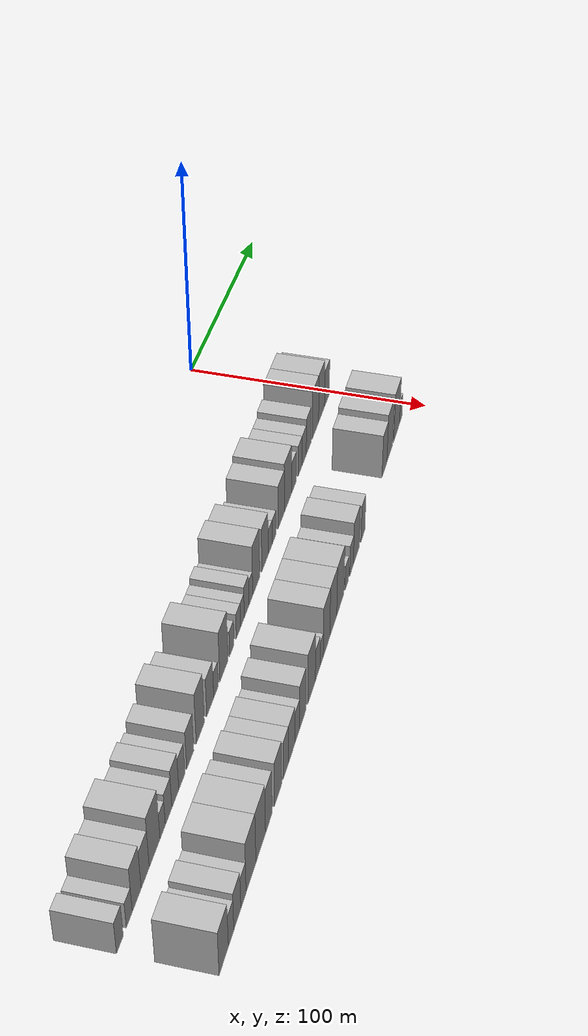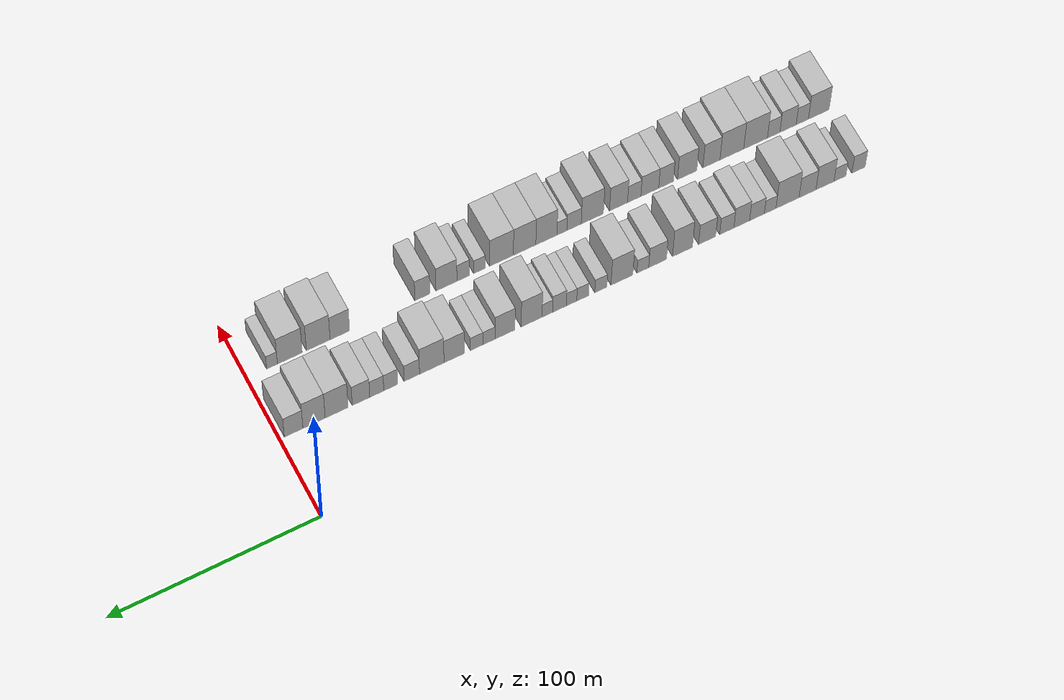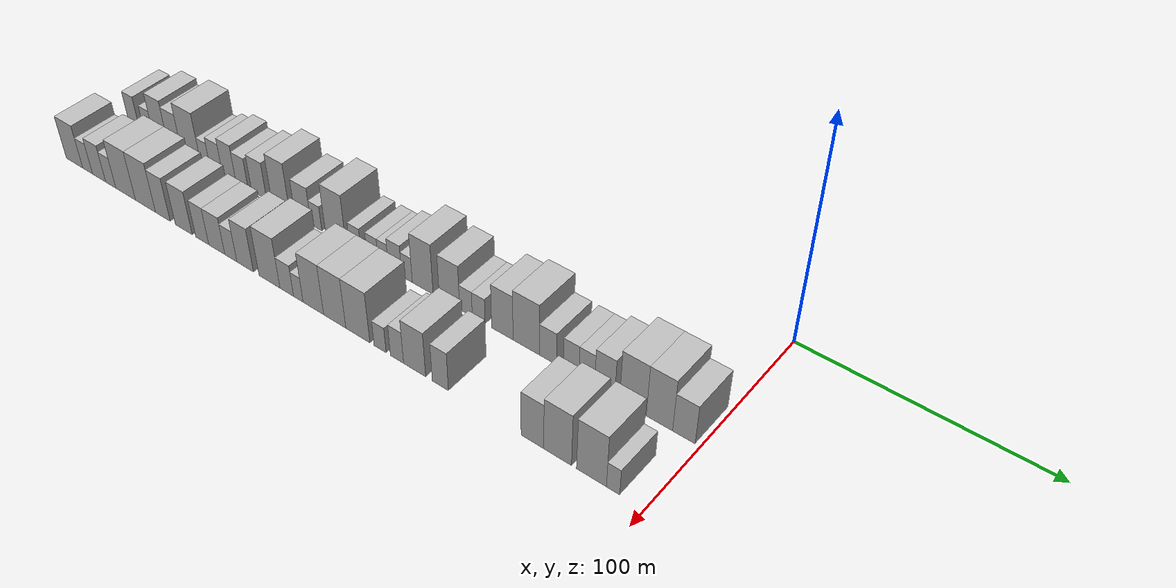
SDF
<sdf version="1.6">
 <world name="default">
  <model name="building_1">
   <static>1</static>
   <pose>50.0000 -280.6989 0 0.000000 0.000000 0.000000</pose>
   <link name="link">
    <pose>0 0 7.50 0 0 0</pose>
    <collision name="collision"><geometry><box><size>20.0000 6.6021 15.0000</size></box></geometry></collision>
    <visual name="visual">
     <cast_shadows>0</cast_shadows>
     <geometry><box><size>20.0000 6.6021 15.0000</size></box></geometry>
     <material>
      <script>
       <uri>model://HANNAS_wall/materials/scripts</uri>
       <uri>model://HANNAS_wall/materials/textures</uri>
       <name>vrc/HANNAS_wall</name>
      </script>
     </material>
    </visual>
   </link>
  </model>
  <model name="building_2">
   <static>1</static>
   <pose>50.0000 -271.4203 0 0.000000 0.000000 0.000000</pose>
   <link name="link">
    <pose>0 0 6.00 0 0 0</pose>
    <collision name="collision"><geometry><box><size>20.0000 5.9551 12.0000</size></box></geometry></collision>
    <visual name="visual">
     <cast_shadows>0</cast_shadows>
     <geometry><box><size>20.0000 5.9551 12.0000</size></box></geometry>
     <material>
      <script>
       <uri>model://HANNAS_wall/materials/scripts</uri>
       <uri>model://HANNAS_wall/materials/textures</uri>
       <name>vrc/HANNAS_wall</name>
      </script>
     </material>
    </visual>
   </link>
  </model>
  <model name="building_3">
   <static>1</static>
   <pose>50.0000 -263.9315 0 0.000000 0.000000 0.000000</pose>
   <link name="link">
    <pose>0 0 10.50 0 0 0</pose>
    <collision name="collision"><geometry><box><size>20.0000 9.0226 21.0000</size></box></geometry></collision>
    <visual name="visual">
     <cast_shadows>0</cast_shadows>
     <geometry><box><size>20.0000 9.0226 21.0000</size></box></geometry>
     <material>
      <script>
       <uri>model://HANNAS_wall/materials/scripts</uri>
       <uri>model://HANNAS_wall/materials/textures</uri>
       <name>vrc/HANNAS_wall</name>
      </script>
     </material>
    </visual>
   </link>
  </model>
  <model name="building_4">
   <static>1</static>
   <pose>50.0000 -255.2241 0 0.000000 0.000000 0.000000</pose>
   <link name="link">
    <pose>0 0 9.00 0 0 0</pose>
    <collision name="collision"><geometry><box><size>20.0000 8.3921 18.0000</size></box></geometry></collision>
    <visual name="visual">
     <cast_shadows>0</cast_shadows>
     <geometry><box><size>20.0000 8.3921 18.0000</size></box></geometry>
     <material>
      <script>
       <uri>model://HANNAS_wall/materials/scripts</uri>
       <uri>model://HANNAS_wall/materials/textures</uri>
       <name>vrc/HANNAS_wall</name>
      </script>
     </material>
    </visual>
   </link>
  </model>
  <model name="building_5">
   <static>1</static>
   <pose>50.0000 -245.2907 0 0.000000 0.000000 0.000000</pose>
   <link name="link">
    <pose>0 0 12.00 0 0 0</pose>
    <collision name="collision"><geometry><box><size>20.0000 11.4748 24.0000</size></box></geometry></collision>
    <visual name="visual">
     <cast_shadows>0</cast_shadows>
     <geometry><box><size>20.0000 11.4748 24.0000</size></box></geometry>
     <material>
      <script>
       <uri>model://HANNAS_wall/materials/scripts</uri>
       <uri>model://HANNAS_wall/materials/textures</uri>
       <name>vrc/HANNAS_wall</name>
      </script>
     </material>
    </visual>
   </link>
  </model>
  <model name="building_6">
   <static>1</static>
   <pose>50.0000 -236.6807 0 0.000000 0.000000 0.000000</pose>
   <link name="link">
    <pose>0 0 6.00 0 0 0</pose>
    <collision name="collision"><geometry><box><size>20.0000 5.7452 12.0000</size></box></geometry></collision>
    <visual name="visual">
     <cast_shadows>0</cast_shadows>
     <geometry><box><size>20.0000 5.7452 12.0000</size></box></geometry>
     <material>
      <script>
       <uri>model://HANNAS_wall/materials/scripts</uri>
       <uri>model://HANNAS_wall/materials/textures</uri>
       <name>vrc/HANNAS_wall</name>
      </script>
     </material>
    </visual>
   </link>
  </model>
  <model name="building_7">
   <static>1</static>
   <pose>50.0000 -230.1523 0 0.000000 0.000000 0.000000</pose>
   <link name="link">
    <pose>0 0 7.50 0 0 0</pose>
    <collision name="collision"><geometry><box><size>20.0000 7.3116 15.0000</size></box></geometry></collision>
    <visual name="visual">
     <cast_shadows>0</cast_shadows>
     <geometry><box><size>20.0000 7.3116 15.0000</size></box></geometry>
     <material>
      <script>
       <uri>model://HANNAS_wall/materials/scripts</uri>
       <uri>model://HANNAS_wall/materials/textures</uri>
       <name>vrc/HANNAS_wall</name>
      </script>
     </material>
    </visual>
   </link>
  </model>
  <model name="building_8">
   <static>1</static>
   <pose>50.0000 -222.6213 0 0.000000 0.000000 0.000000</pose>
   <link name="link">
    <pose>0 0 9.00 0 0 0</pose>
    <collision name="collision"><geometry><box><size>20.0000 7.7506 18.0000</size></box></geometry></collision>
    <visual name="visual">
     <cast_shadows>0</cast_shadows>
     <geometry><box><size>20.0000 7.7506 18.0000</size></box></geometry>
     <material>
      <script>
       <uri>model://HANNAS_wall/materials/scripts</uri>
       <uri>model://HANNAS_wall/materials/textures</uri>
       <name>vrc/HANNAS_wall</name>
      </script>
     </material>
    </visual>
   </link>
  </model>
  <model name="building_9">
   <static>1</static>
   <pose>50.0000 -215.2409 0 0.000000 0.000000 0.000000</pose>
   <link name="link">
    <pose>0 0 7.50 0 0 0</pose>
    <collision name="collision"><geometry><box><size>20.0000 7.0102 15.0000</size></box></geometry></collision>
    <visual name="visual">
     <cast_shadows>0</cast_shadows>
     <geometry><box><size>20.0000 7.0102 15.0000</size></box></geometry>
     <material>
      <script>
       <uri>model://HANNAS_wall/materials/scripts</uri>
       <uri>model://HANNAS_wall/materials/textures</uri>
       <name>vrc/HANNAS_wall</name>
      </script>
     </material>
    </visual>
   </link>
  </model>
  <model name="building_10">
   <static>1</static>
   <pose>50.0000 -205.5315 0 0.000000 0.000000 0.000000</pose>
   <link name="link">
    <pose>0 0 9.00 0 0 0</pose>
    <collision name="collision"><geometry><box><size>20.0000 8.4085 18.0000</size></box></geometry></collision>
    <visual name="visual">
     <cast_shadows>0</cast_shadows>
     <geometry><box><size>20.0000 8.4085 18.0000</size></box></geometry>
     <material>
      <script>
       <uri>model://HANNAS_wall/materials/scripts</uri>
       <uri>model://HANNAS_wall/materials/textures</uri>
       <name>vrc/HANNAS_wall</name>
      </script>
     </material>
    </visual>
   </link>
  </model>
  <model name="building_11">
   <static>1</static>
   <pose>50.0000 -193.4577 0 0.000000 0.000000 0.000000</pose>
   <link name="link">
    <pose>0 0 12.00 0 0 0</pose>
    <collision name="collision"><geometry><box><size>20.0000 9.7391 24.0000</size></box></geometry></collision>
    <visual name="visual">
     <cast_shadows>0</cast_shadows>
     <geometry><box><size>20.0000 9.7391 24.0000</size></box></geometry>
     <material>
      <script>
       <uri>model://HANNAS_wall/materials/scripts</uri>
       <uri>model://HANNAS_wall/materials/textures</uri>
       <name>vrc/HANNAS_wall</name>
      </script>
     </material>
    </visual>
   </link>
  </model>
  <model name="building_12">
   <static>1</static>
   <pose>50.0000 -181.2519 0 0.000000 0.000000 0.000000</pose>
   <link name="link">
    <pose>0 0 9.00 0 0 0</pose>
    <collision name="collision"><geometry><box><size>20.0000 8.6725 18.0000</size></box></geometry></collision>
    <visual name="visual">
     <cast_shadows>0</cast_shadows>
     <geometry><box><size>20.0000 8.6725 18.0000</size></box></geometry>
     <material>
      <script>
       <uri>model://HANNAS_wall/materials/scripts</uri>
       <uri>model://HANNAS_wall/materials/textures</uri>
       <name>vrc/HANNAS_wall</name>
      </script>
     </material>
    </visual>
   </link>
  </model>
  <model name="building_13">
   <static>1</static>
   <pose>50.0000 -174.0403 0 0.000000 0.000000 0.000000</pose>
   <link name="link">
    <pose>0 0 6.00 0 0 0</pose>
    <collision name="collision"><geometry><box><size>20.0000 5.7507 12.0000</size></box></geometry></collision>
    <visual name="visual">
     <cast_shadows>0</cast_shadows>
     <geometry><box><size>20.0000 5.7507 12.0000</size></box></geometry>
     <material>
      <script>
       <uri>model://HANNAS_wall/materials/scripts</uri>
       <uri>model://HANNAS_wall/materials/textures</uri>
       <name>vrc/HANNAS_wall</name>
      </script>
     </material>
    </visual>
   </link>
  </model>
  <model name="building_14">
   <static>1</static>
   <pose>50.0000 -163.8417 0 0.000000 0.000000 0.000000</pose>
   <link name="link">
    <pose>0 0 12.00 0 0 0</pose>
    <collision name="collision"><geometry><box><size>20.0000 10.6465 24.0000</size></box></geometry></collision>
    <visual name="visual">
     <cast_shadows>0</cast_shadows>
     <geometry><box><size>20.0000 10.6465 24.0000</size></box></geometry>
     <material>
      <script>
       <uri>model://HANNAS_wall/materials/scripts</uri>
       <uri>model://HANNAS_wall/materials/textures</uri>
       <name>vrc/HANNAS_wall</name>
      </script>
     </material>
    </visual>
   </link>
  </model>
  <model name="building_15">
   <static>1</static>
   <pose>50.0000 -153.5660 0 0.000000 0.000000 0.000000</pose>
   <link name="link">
    <pose>0 0 6.00 0 0 0</pose>
    <collision name="collision"><geometry><box><size>20.0000 5.9048 12.0000</size></box></geometry></collision>
    <visual name="visual">
     <cast_shadows>0</cast_shadows>
     <geometry><box><size>20.0000 5.9048 12.0000</size></box></geometry>
     <material>
      <script>
       <uri>model://HANNAS_wall/materials/scripts</uri>
       <uri>model://HANNAS_wall/materials/textures</uri>
       <name>vrc/HANNAS_wall</name>
      </script>
     </material>
    </visual>
   </link>
  </model>
  <model name="building_16">
   <static>1</static>
   <pose>50.0000 -144.7277 0 0.000000 0.000000 0.000000</pose>
   <link name="link">
    <pose>0 0 6.00 0 0 0</pose>
    <collision name="collision"><geometry><box><size>20.0000 5.7719 12.0000</size></box></geometry></collision>
    <visual name="visual">
     <cast_shadows>0</cast_shadows>
     <geometry><box><size>20.0000 5.7719 12.0000</size></box></geometry>
     <material>
      <script>
       <uri>model://HANNAS_wall/materials/scripts</uri>
       <uri>model://HANNAS_wall/materials/textures</uri>
       <name>vrc/HANNAS_wall</name>
      </script>
     </material>
    </visual>
   </link>
  </model>
  <model name="building_17">
   <static>1</static>
   <pose>50.0000 -139.3136 0 0.000000 0.000000 0.000000</pose>
   <link name="link">
    <pose>0 0 6.00 0 0 0</pose>
    <collision name="collision"><geometry><box><size>20.0000 5.0563 12.0000</size></box></geometry></collision>
    <visual name="visual">
     <cast_shadows>0</cast_shadows>
     <geometry><box><size>20.0000 5.0563 12.0000</size></box></geometry>
     <material>
      <script>
       <uri>model://HANNAS_wall/materials/scripts</uri>
       <uri>model://HANNAS_wall/materials/textures</uri>
       <name>vrc/HANNAS_wall</name>
      </script>
     </material>
    </visual>
   </link>
  </model>
  <model name="building_18">
   <static>1</static>
   <pose>50.0000 -133.4792 0 0.000000 0.000000 0.000000</pose>
   <link name="link">
    <pose>0 0 7.50 0 0 0</pose>
    <collision name="collision"><geometry><box><size>20.0000 6.6124 15.0000</size></box></geometry></collision>
    <visual name="visual">
     <cast_shadows>0</cast_shadows>
     <geometry><box><size>20.0000 6.6124 15.0000</size></box></geometry>
     <material>
      <script>
       <uri>model://HANNAS_wall/materials/scripts</uri>
       <uri>model://HANNAS_wall/materials/textures</uri>
       <name>vrc/HANNAS_wall</name>
      </script>
     </material>
    </visual>
   </link>
  </model>
  <model name="building_19">
   <static>1</static>
   <pose>50.0000 -127.5917 0 0.000000 0.000000 0.000000</pose>
   <link name="link">
    <pose>0 0 6.00 0 0 0</pose>
    <collision name="collision"><geometry><box><size>20.0000 5.1625 12.0000</size></box></geometry></collision>
    <visual name="visual">
     <cast_shadows>0</cast_shadows>
     <geometry><box><size>20.0000 5.1625 12.0000</size></box></geometry>
     <material>
      <script>
       <uri>model://HANNAS_wall/materials/scripts</uri>
       <uri>model://HANNAS_wall/materials/textures</uri>
       <name>vrc/HANNAS_wall</name>
      </script>
     </material>
    </visual>
   </link>
  </model>
  <model name="building_20">
   <static>1</static>
   <pose>50.0000 -119.9798 0 0.000000 0.000000 0.000000</pose>
   <link name="link">
    <pose>0 0 12.00 0 0 0</pose>
    <collision name="collision"><geometry><box><size>20.0000 10.0615 24.0000</size></box></geometry></collision>
    <visual name="visual">
     <cast_shadows>0</cast_shadows>
     <geometry><box><size>20.0000 10.0615 24.0000</size></box></geometry>
     <material>
      <script>
       <uri>model://HANNAS_wall/materials/scripts</uri>
       <uri>model://HANNAS_wall/materials/textures</uri>
       <name>vrc/HANNAS_wall</name>
      </script>
     </material>
    </visual>
   </link>
  </model>
  <model name="building_21">
   <static>1</static>
   <pose>50.0000 -107.1472 0 0.000000 0.000000 0.000000</pose>
   <link name="link">
    <pose>0 0 10.50 0 0 0</pose>
    <collision name="collision"><geometry><box><size>20.0000 9.6036 21.0000</size></box></geometry></collision>
    <visual name="visual">
     <cast_shadows>0</cast_shadows>
     <geometry><box><size>20.0000 9.6036 21.0000</size></box></geometry>
     <material>
      <script>
       <uri>model://HANNAS_wall/materials/scripts</uri>
       <uri>model://HANNAS_wall/materials/textures</uri>
       <name>vrc/HANNAS_wall</name>
      </script>
     </material>
    </visual>
   </link>
  </model>
  <model name="building_22">
   <static>1</static>
   <pose>50.0000 -99.4069 0 0.000000 0.000000 0.000000</pose>
   <link name="link">
    <pose>0 0 6.00 0 0 0</pose>
    <collision name="collision"><geometry><box><size>20.0000 5.8770 12.0000</size></box></geometry></collision>
    <visual name="visual">
     <cast_shadows>0</cast_shadows>
     <geometry><box><size>20.0000 5.8770 12.0000</size></box></geometry>
     <material>
      <script>
       <uri>model://HANNAS_wall/materials/scripts</uri>
       <uri>model://HANNAS_wall/materials/textures</uri>
       <name>vrc/HANNAS_wall</name>
      </script>
     </material>
    </visual>
   </link>
  </model>
  <model name="building_23">
   <static>1</static>
   <pose>50.0000 -93.5156 0 0.000000 0.000000 0.000000</pose>
   <link name="link">
    <pose>0 0 6.00 0 0 0</pose>
    <collision name="collision"><geometry><box><size>20.0000 5.9058 12.0000</size></box></geometry></collision>
    <visual name="visual">
     <cast_shadows>0</cast_shadows>
     <geometry><box><size>20.0000 5.9058 12.0000</size></box></geometry>
     <material>
      <script>
       <uri>model://HANNAS_wall/materials/scripts</uri>
       <uri>model://HANNAS_wall/materials/textures</uri>
       <name>vrc/HANNAS_wall</name>
      </script>
     </material>
    </visual>
   </link>
  </model>
  <model name="building_24">
   <static>1</static>
   <pose>50.0000 -82.7268 0 0.000000 0.000000 0.000000</pose>
   <link name="link">
    <pose>0 0 10.50 0 0 0</pose>
    <collision name="collision"><geometry><box><size>20.0000 9.6717 21.0000</size></box></geometry></collision>
    <visual name="visual">
     <cast_shadows>0</cast_shadows>
     <geometry><box><size>20.0000 9.6717 21.0000</size></box></geometry>
     <material>
      <script>
       <uri>model://HANNAS_wall/materials/scripts</uri>
       <uri>model://HANNAS_wall/materials/textures</uri>
       <name>vrc/HANNAS_wall</name>
      </script>
     </material>
    </visual>
   </link>
  </model>
  <model name="building_25">
   <static>1</static>
   <pose>50.0000 -72.0523 0 0.000000 0.000000 0.000000</pose>
   <link name="link">
    <pose>0 0 12.00 0 0 0</pose>
    <collision name="collision"><geometry><box><size>20.0000 11.6772 24.0000</size></box></geometry></collision>
    <visual name="visual">
     <cast_shadows>0</cast_shadows>
     <geometry><box><size>20.0000 11.6772 24.0000</size></box></geometry>
     <material>
      <script>
       <uri>model://HANNAS_wall/materials/scripts</uri>
       <uri>model://HANNAS_wall/materials/textures</uri>
       <name>vrc/HANNAS_wall</name>
      </script>
     </material>
    </visual>
   </link>
  </model>
  <model name="building_26">
   <static>1</static>
   <pose>50.0000 -62.5154 0 0.000000 0.000000 0.000000</pose>
   <link name="link">
    <pose>0 0 7.50 0 0 0</pose>
    <collision name="collision"><geometry><box><size>20.0000 7.3966 15.0000</size></box></geometry></collision>
    <visual name="visual">
     <cast_shadows>0</cast_shadows>
     <geometry><box><size>20.0000 7.3966 15.0000</size></box></geometry>
     <material>
      <script>
       <uri>model://HANNAS_wall/materials/scripts</uri>
       <uri>model://HANNAS_wall/materials/textures</uri>
       <name>vrc/HANNAS_wall</name>
      </script>
     </material>
    </visual>
   </link>
  </model>
  <model name="building_27">
   <static>1</static>
   <pose>50.0000 -52.4960 0 0.000000 0.000000 0.000000</pose>
   <link name="link">
    <pose>0 0 7.50 0 0 0</pose>
    <collision name="collision"><geometry><box><size>20.0000 6.6422 15.0000</size></box></geometry></collision>
    <visual name="visual">
     <cast_shadows>0</cast_shadows>
     <geometry><box><size>20.0000 6.6422 15.0000</size></box></geometry>
     <material>
      <script>
       <uri>model://HANNAS_wall/materials/scripts</uri>
       <uri>model://HANNAS_wall/materials/textures</uri>
       <name>vrc/HANNAS_wall</name>
      </script>
     </material>
    </visual>
   </link>
  </model>
  <model name="building_28">
   <static>1</static>
   <pose>50.0000 -45.8515 0 0.000000 0.000000 0.000000</pose>
   <link name="link">
    <pose>0 0 7.50 0 0 0</pose>
    <collision name="collision"><geometry><box><size>20.0000 6.6469 15.0000</size></box></geometry></collision>
    <visual name="visual">
     <cast_shadows>0</cast_shadows>
     <geometry><box><size>20.0000 6.6469 15.0000</size></box></geometry>
     <material>
      <script>
       <uri>model://HANNAS_wall/materials/scripts</uri>
       <uri>model://HANNAS_wall/materials/textures</uri>
       <name>vrc/HANNAS_wall</name>
      </script>
     </material>
    </visual>
   </link>
  </model>
  <model name="building_29">
   <static>1</static>
   <pose>50.0000 -38.3712 0 0.000000 0.000000 0.000000</pose>
   <link name="link">
    <pose>0 0 9.00 0 0 0</pose>
    <collision name="collision"><geometry><box><size>20.0000 8.3137 18.0000</size></box></geometry></collision>
    <visual name="visual">
     <cast_shadows>0</cast_shadows>
     <geometry><box><size>20.0000 8.3137 18.0000</size></box></geometry>
     <material>
      <script>
       <uri>model://HANNAS_wall/materials/scripts</uri>
       <uri>model://HANNAS_wall/materials/textures</uri>
       <name>vrc/HANNAS_wall</name>
      </script>
     </material>
    </visual>
   </link>
  </model>
  <model name="building_30">
   <static>1</static>
   <pose>50.0000 -26.8099 0 0.000000 0.000000 0.000000</pose>
   <link name="link">
    <pose>0 0 12.00 0 0 0</pose>
    <collision name="collision"><geometry><box><size>20.0000 10.8089 24.0000</size></box></geometry></collision>
    <visual name="visual">
     <cast_shadows>0</cast_shadows>
     <geometry><box><size>20.0000 10.8089 24.0000</size></box></geometry>
     <material>
      <script>
       <uri>model://HANNAS_wall/materials/scripts</uri>
       <uri>model://HANNAS_wall/materials/textures</uri>
       <name>vrc/HANNAS_wall</name>
      </script>
     </material>
    </visual>
   </link>
  </model>
  <model name="building_31">
   <static>1</static>
   <pose>50.0000 -16.1698 0 0.000000 0.000000 0.000000</pose>
   <link name="link">
    <pose>0 0 12.00 0 0 0</pose>
    <collision name="collision"><geometry><box><size>20.0000 10.4713 24.0000</size></box></geometry></collision>
    <visual name="visual">
     <cast_shadows>0</cast_shadows>
     <geometry><box><size>20.0000 10.4713 24.0000</size></box></geometry>
     <material>
      <script>
       <uri>model://HANNAS_wall/materials/scripts</uri>
       <uri>model://HANNAS_wall/materials/textures</uri>
       <name>vrc/HANNAS_wall</name>
      </script>
     </material>
    </visual>
   </link>
  </model>
  <model name="building_32">
   <static>1</static>
   <pose>50.0000 -6.5407 0 0.000000 0.000000 0.000000</pose>
   <link name="link">
    <pose>0 0 9.00 0 0 0</pose>
    <collision name="collision"><geometry><box><size>20.0000 8.7869 18.0000</size></box></geometry></collision>
    <visual name="visual">
     <cast_shadows>0</cast_shadows>
     <geometry><box><size>20.0000 8.7869 18.0000</size></box></geometry>
     <material>
      <script>
       <uri>model://HANNAS_wall/materials/scripts</uri>
       <uri>model://HANNAS_wall/materials/textures</uri>
       <name>vrc/HANNAS_wall</name>
      </script>
     </material>
    </visual>
   </link>
  </model>
  <model name="building_60">
   <static>1</static>
   <pose>82.0000 -278.7979 0 0.000000 0.000000 0.000000</pose>
   <link name="link">
    <pose>0 0 10.50 0 0 0</pose>
    <collision name="collision"><geometry><box><size>20.0000 10.4042 21.0000</size></box></geometry></collision>
    <visual name="visual">
     <cast_shadows>0</cast_shadows>
     <geometry><box><size>20.0000 10.4042 21.0000</size></box></geometry>
     <material>
      <script>
       <uri>model://HANNAS_wall/materials/scripts</uri>
       <uri>model://HANNAS_wall/materials/textures</uri>
       <name>vrc/HANNAS_wall</name>
      </script>
     </material>
    </visual>
   </link>
  </model>
  <model name="building_61">
   <static>1</static>
   <pose>82.0000 -270.5188 0 0.000000 0.000000 0.000000</pose>
   <link name="link">
    <pose>0 0 7.50 0 0 0</pose>
    <collision name="collision"><geometry><box><size>20.0000 6.1541 15.0000</size></box></geometry></collision>
    <visual name="visual">
     <cast_shadows>0</cast_shadows>
     <geometry><box><size>20.0000 6.1541 15.0000</size></box></geometry>
     <material>
      <script>
       <uri>model://HANNAS_wall/materials/scripts</uri>
       <uri>model://HANNAS_wall/materials/textures</uri>
       <name>vrc/HANNAS_wall</name>
      </script>
     </material>
    </visual>
   </link>
  </model>
  <model name="building_62">
   <static>1</static>
   <pose>82.0000 -263.3850 0 0.000000 0.000000 0.000000</pose>
   <link name="link">
    <pose>0 0 9.00 0 0 0</pose>
    <collision name="collision"><geometry><box><size>20.0000 8.1135 18.0000</size></box></geometry></collision>
    <visual name="visual">
     <cast_shadows>0</cast_shadows>
     <geometry><box><size>20.0000 8.1135 18.0000</size></box></geometry>
     <material>
      <script>
       <uri>model://HANNAS_wall/materials/scripts</uri>
       <uri>model://HANNAS_wall/materials/textures</uri>
       <name>vrc/HANNAS_wall</name>
      </script>
     </material>
    </visual>
   </link>
  </model>
  <model name="building_63">
   <static>1</static>
   <pose>82.0000 -256.2146 0 0.000000 0.000000 0.000000</pose>
   <link name="link">
    <pose>0 0 7.50 0 0 0</pose>
    <collision name="collision"><geometry><box><size>20.0000 6.2274 15.0000</size></box></geometry></collision>
    <visual name="visual">
     <cast_shadows>0</cast_shadows>
     <geometry><box><size>20.0000 6.2274 15.0000</size></box></geometry>
     <material>
      <script>
       <uri>model://HANNAS_wall/materials/scripts</uri>
       <uri>model://HANNAS_wall/materials/textures</uri>
       <name>vrc/HANNAS_wall</name>
      </script>
     </material>
    </visual>
   </link>
  </model>
  <model name="building_64">
   <static>1</static>
   <pose>82.0000 -247.1784 0 0.000000 0.000000 0.000000</pose>
   <link name="link">
    <pose>0 0 12.00 0 0 0</pose>
    <collision name="collision"><geometry><box><size>20.0000 11.8451 24.0000</size></box></geometry></collision>
    <visual name="visual">
     <cast_shadows>0</cast_shadows>
     <geometry><box><size>20.0000 11.8451 24.0000</size></box></geometry>
     <material>
      <script>
       <uri>model://HANNAS_wall/materials/scripts</uri>
       <uri>model://HANNAS_wall/materials/textures</uri>
       <name>vrc/HANNAS_wall</name>
      </script>
     </material>
    </visual>
   </link>
  </model>
  <model name="building_65">
   <static>1</static>
   <pose>82.0000 -235.3333 0 0.000000 0.000000 0.000000</pose>
   <link name="link">
    <pose>0 0 12.00 0 0 0</pose>
    <collision name="collision"><geometry><box><size>20.0000 11.8450 24.0000</size></box></geometry></collision>
    <visual name="visual">
     <cast_shadows>0</cast_shadows>
     <geometry><box><size>20.0000 11.8450 24.0000</size></box></geometry>
     <material>
      <script>
       <uri>model://HANNAS_wall/materials/scripts</uri>
       <uri>model://HANNAS_wall/materials/textures</uri>
       <name>vrc/HANNAS_wall</name>
      </script>
     </material>
    </visual>
   </link>
  </model>
  <model name="building_66">
   <static>1</static>
   <pose>82.0000 -225.1720 0 0.000000 0.000000 0.000000</pose>
   <link name="link">
    <pose>0 0 10.50 0 0 0</pose>
    <collision name="collision"><geometry><box><size>20.0000 8.4777 21.0000</size></box></geometry></collision>
    <visual name="visual">
     <cast_shadows>0</cast_shadows>
     <geometry><box><size>20.0000 8.4777 21.0000</size></box></geometry>
     <material>
      <script>
       <uri>model://HANNAS_wall/materials/scripts</uri>
       <uri>model://HANNAS_wall/materials/textures</uri>
       <name>vrc/HANNAS_wall</name>
      </script>
     </material>
    </visual>
   </link>
  </model>
  <model name="building_67">
   <static>1</static>
   <pose>82.0000 -213.1423 0 0.000000 0.000000 0.000000</pose>
   <link name="link">
    <pose>0 0 10.50 0 0 0</pose>
    <collision name="collision"><geometry><box><size>20.0000 9.5817 21.0000</size></box></geometry></collision>
    <visual name="visual">
     <cast_shadows>0</cast_shadows>
     <geometry><box><size>20.0000 9.5817 21.0000</size></box></geometry>
     <material>
      <script>
       <uri>model://HANNAS_wall/materials/scripts</uri>
       <uri>model://HANNAS_wall/materials/textures</uri>
       <name>vrc/HANNAS_wall</name>
      </script>
     </material>
    </visual>
   </link>
  </model>
  <model name="building_68">
   <static>1</static>
   <pose>82.0000 -202.7256 0 0.000000 0.000000 0.000000</pose>
   <link name="link">
    <pose>0 0 9.00 0 0 0</pose>
    <collision name="collision"><geometry><box><size>20.0000 7.2518 18.0000</size></box></geometry></collision>
    <visual name="visual">
     <cast_shadows>0</cast_shadows>
     <geometry><box><size>20.0000 7.2518 18.0000</size></box></geometry>
     <material>
      <script>
       <uri>model://HANNAS_wall/materials/scripts</uri>
       <uri>model://HANNAS_wall/materials/textures</uri>
       <name>vrc/HANNAS_wall</name>
      </script>
     </material>
    </visual>
   </link>
  </model>
  <model name="building_69">
   <static>1</static>
   <pose>82.0000 -194.6922 0 0.000000 0.000000 0.000000</pose>
   <link name="link">
    <pose>0 0 9.00 0 0 0</pose>
    <collision name="collision"><geometry><box><size>20.0000 8.8149 18.0000</size></box></geometry></collision>
    <visual name="visual">
     <cast_shadows>0</cast_shadows>
     <geometry><box><size>20.0000 8.8149 18.0000</size></box></geometry>
     <material>
      <script>
       <uri>model://HANNAS_wall/materials/scripts</uri>
       <uri>model://HANNAS_wall/materials/textures</uri>
       <name>vrc/HANNAS_wall</name>
      </script>
     </material>
    </visual>
   </link>
  </model>
  <model name="building_70">
   <static>1</static>
   <pose>82.0000 -187.0062 0 0.000000 0.000000 0.000000</pose>
   <link name="link">
    <pose>0 0 7.50 0 0 0</pose>
    <collision name="collision"><geometry><box><size>20.0000 6.5570 15.0000</size></box></geometry></collision>
    <visual name="visual">
     <cast_shadows>0</cast_shadows>
     <geometry><box><size>20.0000 6.5570 15.0000</size></box></geometry>
     <material>
      <script>
       <uri>model://HANNAS_wall/materials/scripts</uri>
       <uri>model://HANNAS_wall/materials/textures</uri>
       <name>vrc/HANNAS_wall</name>
      </script>
     </material>
    </visual>
   </link>
  </model>
  <model name="building_71">
   <static>1</static>
   <pose>82.0000 -179.2929 0 0.000000 0.000000 0.000000</pose>
   <link name="link">
    <pose>0 0 10.50 0 0 0</pose>
    <collision name="collision"><geometry><box><size>20.0000 8.8696 21.0000</size></box></geometry></collision>
    <visual name="visual">
     <cast_shadows>0</cast_shadows>
     <geometry><box><size>20.0000 8.8696 21.0000</size></box></geometry>
     <material>
      <script>
       <uri>model://HANNAS_wall/materials/scripts</uri>
       <uri>model://HANNAS_wall/materials/textures</uri>
       <name>vrc/HANNAS_wall</name>
      </script>
     </material>
    </visual>
   </link>
  </model>
  <model name="building_72">
   <static>1</static>
   <pose>82.0000 -166.4090 0 0.000000 0.000000 0.000000</pose>
   <link name="link">
    <pose>0 0 12.00 0 0 0</pose>
    <collision name="collision"><geometry><box><size>20.0000 10.8983 24.0000</size></box></geometry></collision>
    <visual name="visual">
     <cast_shadows>0</cast_shadows>
     <geometry><box><size>20.0000 10.8983 24.0000</size></box></geometry>
     <material>
      <script>
       <uri>model://HANNAS_wall/materials/scripts</uri>
       <uri>model://HANNAS_wall/materials/textures</uri>
       <name>vrc/HANNAS_wall</name>
      </script>
     </material>
    </visual>
   </link>
  </model>
  <model name="building_73">
   <static>1</static>
   <pose>82.0000 -157.4553 0 0.000000 0.000000 0.000000</pose>
   <link name="link">
    <pose>0 0 7.50 0 0 0</pose>
    <collision name="collision"><geometry><box><size>20.0000 7.0091 15.0000</size></box></geometry></collision>
    <visual name="visual">
     <cast_shadows>0</cast_shadows>
     <geometry><box><size>20.0000 7.0091 15.0000</size></box></geometry>
     <material>
      <script>
       <uri>model://HANNAS_wall/materials/scripts</uri>
       <uri>model://HANNAS_wall/materials/textures</uri>
       <name>vrc/HANNAS_wall</name>
      </script>
     </material>
    </visual>
   </link>
  </model>
  <model name="building_74">
   <static>1</static>
   <pose>82.0000 -151.5237 0 0.000000 0.000000 0.000000</pose>
   <link name="link">
    <pose>0 0 6.00 0 0 0</pose>
    <collision name="collision"><geometry><box><size>20.0000 4.8541 12.0000</size></box></geometry></collision>
    <visual name="visual">
     <cast_shadows>0</cast_shadows>
     <geometry><box><size>20.0000 4.8541 12.0000</size></box></geometry>
     <material>
      <script>
       <uri>model://HANNAS_wall/materials/scripts</uri>
       <uri>model://HANNAS_wall/materials/textures</uri>
       <name>vrc/HANNAS_wall</name>
      </script>
     </material>
    </visual>
   </link>
  </model>
  <model name="building_75">
   <static>1</static>
   <pose>82.0000 -143.9487 0 0.000000 0.000000 0.000000</pose>
   <link name="link">
    <pose>0 0 12.00 0 0 0</pose>
    <collision name="collision"><geometry><box><size>20.0000 10.2959 24.0000</size></box></geometry></collision>
    <visual name="visual">
     <cast_shadows>0</cast_shadows>
     <geometry><box><size>20.0000 10.2959 24.0000</size></box></geometry>
     <material>
      <script>
       <uri>model://HANNAS_wall/materials/scripts</uri>
       <uri>model://HANNAS_wall/materials/textures</uri>
       <name>vrc/HANNAS_wall</name>
      </script>
     </material>
    </visual>
   </link>
  </model>
  <model name="building_76">
   <static>1</static>
   <pose>82.0000 -133.3387 0 0.000000 0.000000 0.000000</pose>
   <link name="link">
    <pose>0 0 12.00 0 0 0</pose>
    <collision name="collision"><geometry><box><size>20.0000 10.9241 24.0000</size></box></geometry></collision>
    <visual name="visual">
     <cast_shadows>0</cast_shadows>
     <geometry><box><size>20.0000 10.9241 24.0000</size></box></geometry>
     <material>
      <script>
       <uri>model://HANNAS_wall/materials/scripts</uri>
       <uri>model://HANNAS_wall/materials/textures</uri>
       <name>vrc/HANNAS_wall</name>
      </script>
     </material>
    </visual>
   </link>
  </model>
  <model name="building_77">
   <static>1</static>
   <pose>82.0000 -122.0823 0 0.000000 0.000000 0.000000</pose>
   <link name="link">
    <pose>0 0 12.00 0 0 0</pose>
    <collision name="collision"><geometry><box><size>20.0000 11.5886 24.0000</size></box></geometry></collision>
    <visual name="visual">
     <cast_shadows>0</cast_shadows>
     <geometry><box><size>20.0000 11.5886 24.0000</size></box></geometry>
     <material>
      <script>
       <uri>model://HANNAS_wall/materials/scripts</uri>
       <uri>model://HANNAS_wall/materials/textures</uri>
       <name>vrc/HANNAS_wall</name>
      </script>
     </material>
    </visual>
   </link>
  </model>
  <model name="building_78">
   <static>1</static>
   <pose>82.0000 -111.4447 0 0.000000 0.000000 0.000000</pose>
   <link name="link">
    <pose>0 0 6.00 0 0 0</pose>
    <collision name="collision"><geometry><box><size>20.0000 5.6868 12.0000</size></box></geometry></collision>
    <visual name="visual">
     <cast_shadows>0</cast_shadows>
     <geometry><box><size>20.0000 5.6868 12.0000</size></box></geometry>
     <material>
      <script>
       <uri>model://HANNAS_wall/materials/scripts</uri>
       <uri>model://HANNAS_wall/materials/textures</uri>
       <name>vrc/HANNAS_wall</name>
      </script>
     </material>
    </visual>
   </link>
  </model>
  <model name="building_79">
   <static>1</static>
   <pose>82.0000 -103.5504 0 0.000000 0.000000 0.000000</pose>
   <link name="link">
    <pose>0 0 7.50 0 0 0</pose>
    <collision name="collision"><geometry><box><size>20.0000 6.1018 15.0000</size></box></geometry></collision>
    <visual name="visual">
     <cast_shadows>0</cast_shadows>
     <geometry><box><size>20.0000 6.1018 15.0000</size></box></geometry>
     <material>
      <script>
       <uri>model://HANNAS_wall/materials/scripts</uri>
       <uri>model://HANNAS_wall/materials/textures</uri>
       <name>vrc/HANNAS_wall</name>
      </script>
     </material>
    </visual>
   </link>
  </model>
  <model name="building_80">
   <static>1</static>
   <pose>82.0000 -95.4475 0 0.000000 0.000000 0.000000</pose>
   <link name="link">
    <pose>0 0 10.50 0 0 0</pose>
    <collision name="collision"><geometry><box><size>20.0000 10.1040 21.0000</size></box></geometry></collision>
    <visual name="visual">
     <cast_shadows>0</cast_shadows>
     <geometry><box><size>20.0000 10.1040 21.0000</size></box></geometry>
     <material>
      <script>
       <uri>model://HANNAS_wall/materials/scripts</uri>
       <uri>model://HANNAS_wall/materials/textures</uri>
       <name>vrc/HANNAS_wall</name>
      </script>
     </material>
    </visual>
   </link>
  </model>
  <model name="building_81">
   <static>1</static>
   <pose>82.0000 -83.7931 0 0.000000 0.000000 0.000000</pose>
   <link name="link">
    <pose>0 0 9.00 0 0 0</pose>
    <collision name="collision"><geometry><box><size>20.0000 7.2047 18.0000</size></box></geometry></collision>
    <visual name="visual">
     <cast_shadows>0</cast_shadows>
     <geometry><box><size>20.0000 7.2047 18.0000</size></box></geometry>
     <material>
      <script>
       <uri>model://HANNAS_wall/materials/scripts</uri>
       <uri>model://HANNAS_wall/materials/textures</uri>
       <name>vrc/HANNAS_wall</name>
      </script>
     </material>
    </visual>
   </link>
  </model>
  <model name="building_82">
   <static>1</static>
   <pose>82.0000 -44.2752 0 0.000000 0.000000 0.000000</pose>
   <link name="link">
    <pose>0 0 10.50 0 0 0</pose>
    <collision name="collision"><geometry><box><size>20.0000 9.2770 21.0000</size></box></geometry></collision>
    <visual name="visual">
     <cast_shadows>0</cast_shadows>
     <geometry><box><size>20.0000 9.2770 21.0000</size></box></geometry>
     <material>
      <script>
       <uri>model://HANNAS_wall/materials/scripts</uri>
       <uri>model://HANNAS_wall/materials/textures</uri>
       <name>vrc/HANNAS_wall</name>
      </script>
     </material>
    </visual>
   </link>
  </model>
  <model name="building_83">
   <static>1</static>
   <pose>82.0000 -33.9965 0 0.000000 0.000000 0.000000</pose>
   <link name="link">
    <pose>0 0 12.00 0 0 0</pose>
    <collision name="collision"><geometry><box><size>20.0000 11.2805 24.0000</size></box></geometry></collision>
    <visual name="visual">
     <cast_shadows>0</cast_shadows>
     <geometry><box><size>20.0000 11.2805 24.0000</size></box></geometry>
     <material>
      <script>
       <uri>model://HANNAS_wall/materials/scripts</uri>
       <uri>model://HANNAS_wall/materials/textures</uri>
       <name>vrc/HANNAS_wall</name>
      </script>
     </material>
    </visual>
   </link>
  </model>
  <model name="building_84">
   <static>1</static>
   <pose>82.0000 -20.4805 0 0.000000 0.000000 0.000000</pose>
   <link name="link">
    <pose>0 0 12.00 0 0 0</pose>
    <collision name="collision"><geometry><box><size>20.0000 11.7514 24.0000</size></box></geometry></collision>
    <visual name="visual">
     <cast_shadows>0</cast_shadows>
     <geometry><box><size>20.0000 11.7514 24.0000</size></box></geometry>
     <material>
      <script>
       <uri>model://HANNAS_wall/materials/scripts</uri>
       <uri>model://HANNAS_wall/materials/textures</uri>
       <name>vrc/HANNAS_wall</name>
      </script>
     </material>
    </visual>
   </link>
  </model>
  <model name="building_85">
   <static>1</static>
   <pose>82.0000 -12.0353 0 0.000000 0.000000 0.000000</pose>
   <link name="link">
    <pose>0 0 6.00 0 0 0</pose>
    <collision name="collision"><geometry><box><size>20.0000 5.1391 12.0000</size></box></geometry></collision>
    <visual name="visual">
     <cast_shadows>0</cast_shadows>
     <geometry><box><size>20.0000 5.1391 12.0000</size></box></geometry>
     <material>
      <script>
       <uri>model://HANNAS_wall/materials/scripts</uri>
       <uri>model://HANNAS_wall/materials/textures</uri>
       <name>vrc/HANNAS_wall</name>
      </script>
     </material>
    </visual>
   </link>
  </model>
 </world>
</sdf>
